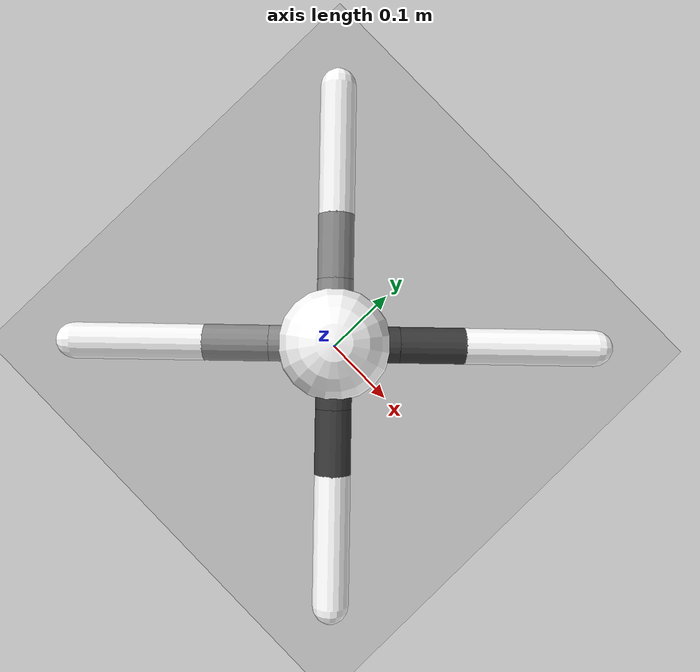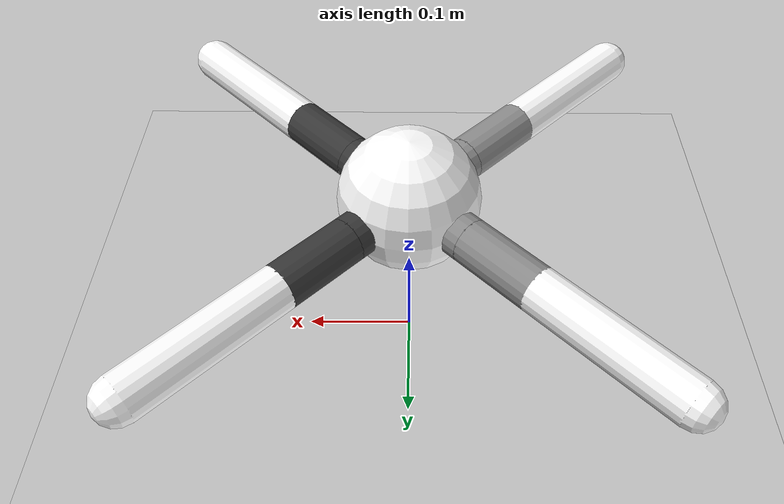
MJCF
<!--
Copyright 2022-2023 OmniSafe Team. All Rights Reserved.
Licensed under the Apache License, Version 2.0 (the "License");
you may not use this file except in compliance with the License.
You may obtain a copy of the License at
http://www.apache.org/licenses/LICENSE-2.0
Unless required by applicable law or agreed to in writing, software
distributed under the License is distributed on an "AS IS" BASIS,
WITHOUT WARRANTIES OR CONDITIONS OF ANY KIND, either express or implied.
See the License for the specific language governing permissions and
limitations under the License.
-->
<mujoco model="ant">
  <size njmax="3000" nconmax="1000"/>
  <compiler angle="radian" coordinate="local" inertiafromgeom="true"/>
  <option integrator="RK4" timestep="0.01"/>
  <statistic meansize="0.23" extent="3.96"/>
  <custom>
    <numeric data="16" name="max_geom_pairs"/>
    <numeric data="0.0 0.0 0.55 1.0 0.0 0.0 0.0 0.0 1.0 0.0 -1.0 0.0 -1.0 0.0 1.0" name="init_qpos"/>
  </custom>
  <default>
    <joint armature="1" damping="1" limited="true"/>
    <!-- condim 3 + Gym's friction, adopted 2026-08-13. See the CONDIM note in
         the header comment. Was condim="6" with MuJoCo's default friction. -->
    <geom condim="3" friction="1 0.5 0.5" density="5.0"/>
    <site size="0.032" type="sphere"/>
  </default>
  <asset>
    <texture type="skybox" builtin="gradient" rgb1="0.527 0.582 0.906" rgb2="0.1 0.1 0.35"
      width="800" height="800" markrgb="1 1 1" mark="random" random="0.001"/>
    <texture name="texplane" builtin="checker" height="100" width="100"
      rgb1="0.7 0.7 0.7" rgb2="0.8 0.8 0.8" type="2d"/>
    <material name="MatPlane" reflectance="0.1" shininess="0.1" specular="0.1"
      texrepeat="10 10" texture="texplane"/>
  </asset>
  <worldbody>
    <light cutoff="100" diffuse="1 1 1" dir="0 0 -1" directional="true" exponent="1" pos="0 0 0.5" specular="0 0 0" castshadow="false"/>
    <geom name="floor" size="5 5 0.1" type="plane" condim="3" conaffinity="3" material="MatPlane"/>
    <body name="robot" pos="0 0 0.18">
      <site name="robot" rgba="1 0 0 .1" pos="0 0 -0.02"/>
      <camera name="vision" pos="0 0.05 0.05" euler="1.57 0 0" fovy="100"/>
      <geom name="torso_geom" pos="0 0 0" size="0.0625" type="sphere" rgba="1 1 1 1"/>
      <joint armature="0" damping="0" limited="false" margin="0.01" name="root" pos="0 0 0" type="free"/>
      <body name="front_left_leg" pos="0 0 0">
        <geom fromto="0.0 0.0 0.0 0.05 0.05 0.0" name="aux_1_geom" size="0.02" type="capsule" rgba="0.22 0.22 0.22 1"/>
        <body name="aux_1" pos="0.05 0.05 0">
          <joint axis="0 0 1" name="hip_1" pos="0.0 0.0 0.0" range="-0.70 0.70" type="hinge"/>
          <geom fromto="0.0 0.0 0.0 0.05 0.05 0.0" name="left_leg_geom" size="0.02" type="capsule" rgba="0.22 0.22 0.22 1"/>
          <body pos="0.05 0.05 0" name="front_left_foot">
            <joint axis="-1 1 0" name="ankle_1" pos="0.0 0.0 0.0" range="0.52 1.74" type="hinge"/>
            <geom fromto="0.0 0.0 0.0 0.1 0.1 0.0" name="left_ankle_geom" size="0.02" type="capsule" rgba="1 1 1 1" density="50000.0"/>
          </body>
        </body>
      </body>
      <body name="front_right_leg" pos="0 0 0">
        <geom fromto="0.0 0.0 0.0 -0.05 0.05 0.0" name="aux_2_geom" size="0.02" type="capsule" rgba="0.55 0.55 0.55 1"/>
        <body name="aux_2" pos="-0.05 0.05 0">
          <joint axis="0 0 1" name="hip_2" pos="0.0 0.0 0.0" range="-0.70 0.70" type="hinge"/>
          <geom fromto="0.0 0.0 0.0 -0.05 0.05 0.0" name="right_leg_geom" size="0.02" type="capsule" rgba="0.55 0.55 0.55 1"/>
          <body pos="-0.05 0.05 0" name="front_right_foot">
            <joint axis="1 1 0" name="ankle_2" pos="0.0 0.0 0.0" range="-1.74 -0.52" type="hinge"/>
            <geom fromto="0.0 0.0 0.0 -0.1 0.1 0.0" name="right_ankle_geom" size="0.02" type="capsule" density="50000.0" rgba="1 1 1 1"/>
          </body>
        </body>
      </body>
      <body name="left_back_leg" pos="0 0 0">
        <geom fromto="0.0 0.0 0.0 -0.05 -0.05 0.0" name="aux_3_geom" size="0.02" type="capsule" rgba="0.55 0.55 0.55 1"/>
        <body name="aux_3" pos="-0.05 -0.05 0">
          <joint axis="0 0 1" name="hip_3" pos="0.0 0.0 0.0" range="-0.70 0.70" type="hinge"/>
          <geom fromto="0.0 0.0 0.0 -0.05 -0.05 0.0" name="back_leg_geom" size="0.02" type="capsule" rgba="0.55 0.55 0.55 1"/>
          <body pos="-0.05 -0.05 0" name="left_back_foot">
            <joint axis="-1 1 0" name="ankle_3" pos="0.0 0.0 0.0" range="-1.74 -0.52" type="hinge"/>
            <geom fromto="0.0 0.0 0.0 -0.1 -0.1 0.0" name="third_ankle_geom" size="0.02" type="capsule" density="50000.0" rgba="1 1 1 1"/>
          </body>
        </body>
      </body>
      <body name="right_back_leg" pos="0 0 0">
        <geom fromto="0.0 0.0 0.0 0.05 -0.05 0.0" name="aux_4_geom" size="0.02" type="capsule" rgba="0.22 0.22 0.22 1"/>
        <body name="aux_4" pos="0.05 -0.05 0">
          <joint axis="0 0 1" name="hip_4" pos="0.0 0.0 0.0" range="-0.70 0.70" type="hinge"/>
          <geom fromto="0.0 0.0 0.0 0.05 -0.05 0.0" name="rightback_leg_geom" size="0.02" type="capsule" rgba="0.22 0.22 0.22 1"/>
          <body pos="0.05 -0.05 0" name="right_back_foot">
            <joint axis="1 1 0" name="ankle_4" pos="0.0 0.0 0.0" range="0.52 1.74" type="hinge"/>
            <geom fromto="0.0 0.0 0.0 0.1 -0.1 0.0" name="fourth_ankle_geom" size="0.02" type="capsule" rgba="1 1 1 1" density="50000.0"/>
          </body>
        </body>
      </body>
    </body>
  </worldbody>
  <sensor>
    <!-- Used for observation -->
    <accelerometer site="robot" name="accelerometer"/>
    <velocimeter site="robot" name="velocimeter"/>
    <gyro site="robot" name="gyro"/>
    <magnetometer site="robot" name="magnetometer"/>

    <!-- Used for intrinsic constraints -->
    <subtreecom body="robot" name="subtreecom"/>
    <subtreelinvel body="robot" name="subtreelinvel"/>
    <subtreeangmom body="robot" name="subtreeangmom"/>

    <framepos objtype="site" objname="robot" name="robot_pos"/>

    <jointpos joint="hip_1" name="hip_1"/>
    <jointpos joint="ankle_1" name="ankle_1"/>
    <jointpos joint="hip_2" name="hip_2"/>
    <jointpos joint="ankle_2" name="ankle_2"/>
    <jointpos joint="hip_3" name="hip_3"/>
    <jointpos joint="ankle_3" name="ankle_3"/>
    <jointpos joint="hip_4" name="hip_4"/>
    <jointpos joint="ankle_4" name="ankle_4"/>

    <frameangvel objtype="site" objname="robot" name="robot_qvel"/>

    <jointvel joint="hip_1" name="hip_1_vel"/>
    <jointvel joint="ankle_1" name="ankle_1_vel"/>
    <jointvel joint="hip_2" name="hip_2_vel"/>
    <jointvel joint="ankle_2" name="ankle_2_vel"/>
    <jointvel joint="hip_3" name="hip_3_vel"/>
    <jointvel joint="ankle_3" name="ankle_3_vel"/>
    <jointvel joint="hip_4" name="hip_4_vel"/>
    <jointvel joint="ankle_4" name="ankle_4_vel"/>
  </sensor>
  <actuator>
    <motor ctrllimited="true" ctrlrange="-1.0 1.0" joint="hip_1" gear="150"/>
    <motor ctrllimited="true" ctrlrange="-1.0 1.0" joint="ankle_1" gear="150"/>
    <motor ctrllimited="true" ctrlrange="-1.0 1.0" joint="hip_2" gear="150"/>
    <motor ctrllimited="true" ctrlrange="-1.0 1.0" joint="ankle_2" gear="150"/>
    <motor ctrllimited="true" ctrlrange="-1.0 1.0" joint="hip_3" gear="150"/>
    <motor ctrllimited="true" ctrlrange="-1.0 1.0" joint="ankle_3" gear="150"/>
    <motor ctrllimited="true" ctrlrange="-1.0 1.0" joint="hip_4" gear="150"/>
    <motor ctrllimited="true" ctrlrange="-1.0 1.0" joint="ankle_4" gear="150"/>
  </actuator>
</mujoco>
